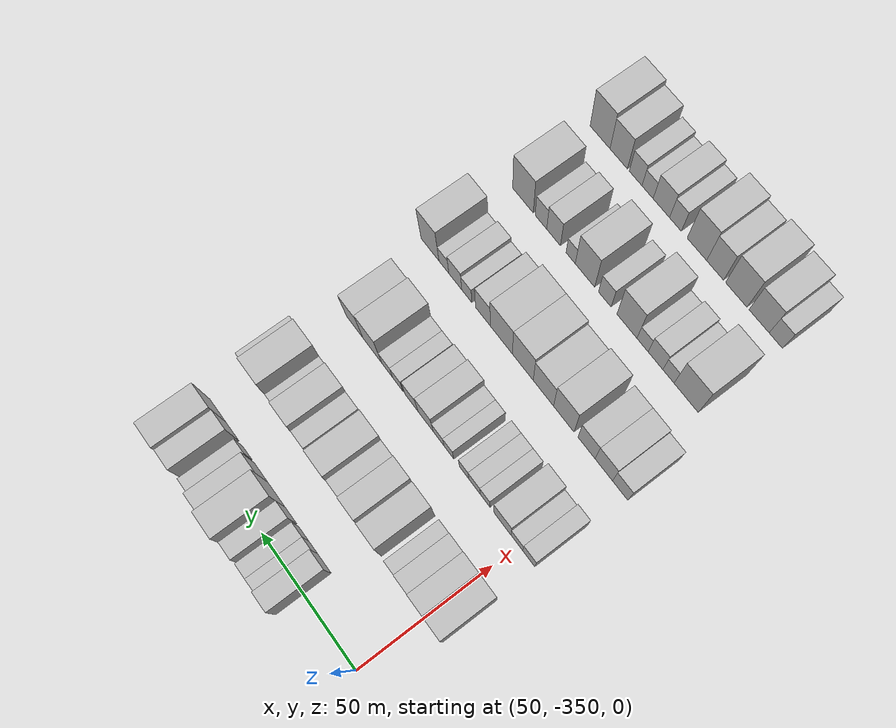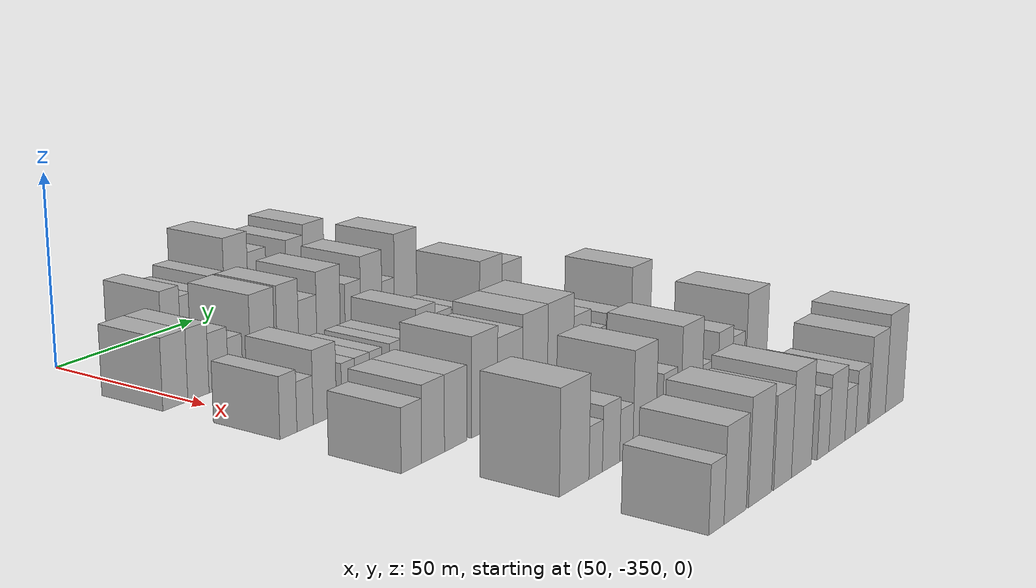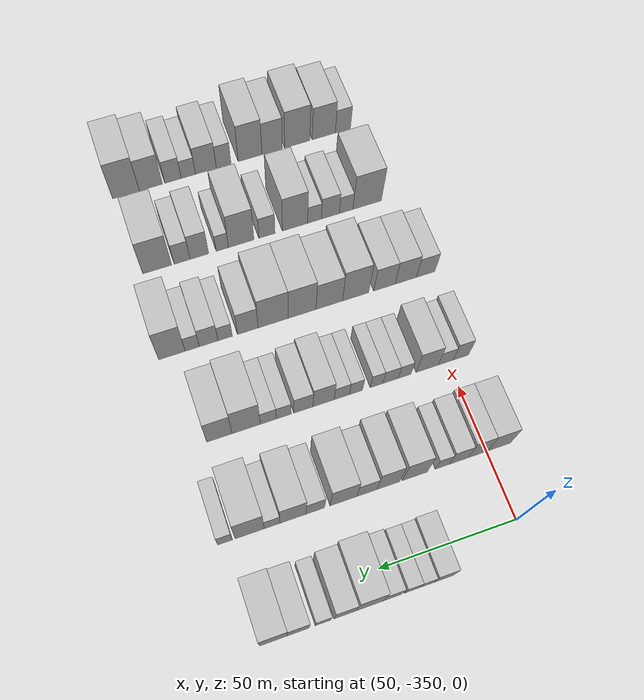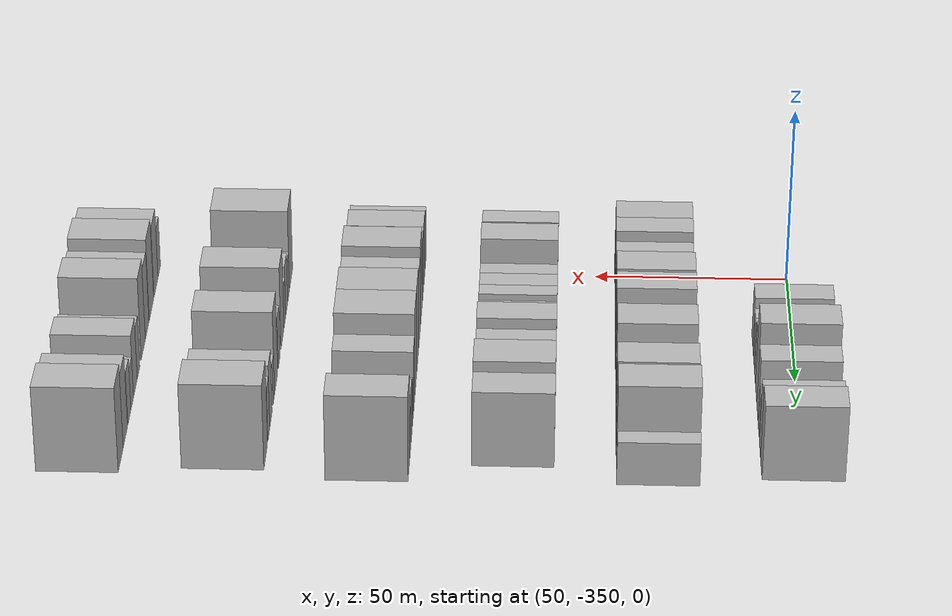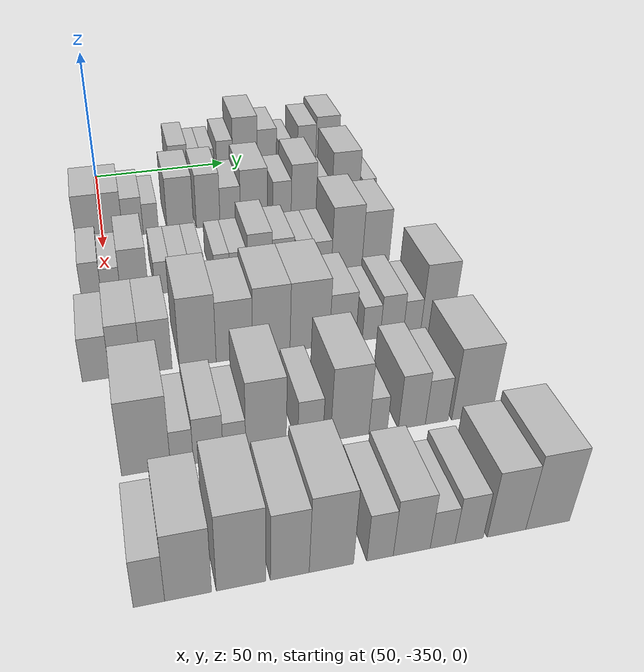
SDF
<sdf version="1.6">
 <world name="default">
  <model name="building_23">
   <static>1</static>
   <pose>50.0000 -318.9872 0 0.000000 0.000000 0.000000</pose>
   <link name="link">
    <pose>0 0 7.50 0 0 0</pose>
    <collision name="collision"><geometry><box><size>20.0000 7.2395 15.0000</size></box></geometry></collision>
    <visual name="visual">
     <cast_shadows>0</cast_shadows>
     <geometry><box><size>20.0000 7.2395 15.0000</size></box></geometry>
     <material>
      <script>
       <uri>model://HANNAS_wall/materials/scripts</uri>
       <uri>model://HANNAS_wall/materials/textures</uri>
       <name>vrc/HANNAS_wall</name>
      </script>
     </material>
    </visual>
   </link>
  </model>
  <model name="building_24">
   <static>1</static>
   <pose>50.0000 -312.9654 0 0.000000 0.000000 0.000000</pose>
   <link name="link">
    <pose>0 0 6.00 0 0 0</pose>
    <collision name="collision"><geometry><box><size>20.0000 4.8041 12.0000</size></box></geometry></collision>
    <visual name="visual">
     <cast_shadows>0</cast_shadows>
     <geometry><box><size>20.0000 4.8041 12.0000</size></box></geometry>
     <material>
      <script>
       <uri>model://HANNAS_wall/materials/scripts</uri>
       <uri>model://HANNAS_wall/materials/textures</uri>
       <name>vrc/HANNAS_wall</name>
      </script>
     </material>
    </visual>
   </link>
  </model>
  <model name="building_25">
   <static>1</static>
   <pose>50.0000 -307.8491 0 0.000000 0.000000 0.000000</pose>
   <link name="link">
    <pose>0 0 6.00 0 0 0</pose>
    <collision name="collision"><geometry><box><size>20.0000 5.4284 12.0000</size></box></geometry></collision>
    <visual name="visual">
     <cast_shadows>0</cast_shadows>
     <geometry><box><size>20.0000 5.4284 12.0000</size></box></geometry>
     <material>
      <script>
       <uri>model://HANNAS_wall/materials/scripts</uri>
       <uri>model://HANNAS_wall/materials/textures</uri>
       <name>vrc/HANNAS_wall</name>
      </script>
     </material>
    </visual>
   </link>
  </model>
  <model name="building_26">
   <static>1</static>
   <pose>50.0000 -300.9718 0 0.000000 0.000000 0.000000</pose>
   <link name="link">
    <pose>0 0 7.50 0 0 0</pose>
    <collision name="collision"><geometry><box><size>20.0000 6.3262 15.0000</size></box></geometry></collision>
    <visual name="visual">
     <cast_shadows>0</cast_shadows>
     <geometry><box><size>20.0000 6.3262 15.0000</size></box></geometry>
     <material>
      <script>
       <uri>model://HANNAS_wall/materials/scripts</uri>
       <uri>model://HANNAS_wall/materials/textures</uri>
       <name>vrc/HANNAS_wall</name>
      </script>
     </material>
    </visual>
   </link>
  </model>
  <model name="building_27">
   <static>1</static>
   <pose>50.0000 -292.9759 0 0.000000 0.000000 0.000000</pose>
   <link name="link">
    <pose>0 0 12.00 0 0 0</pose>
    <collision name="collision"><geometry><box><size>20.0000 9.6657 24.0000</size></box></geometry></collision>
    <visual name="visual">
     <cast_shadows>0</cast_shadows>
     <geometry><box><size>20.0000 9.6657 24.0000</size></box></geometry>
     <material>
      <script>
       <uri>model://HANNAS_wall/materials/scripts</uri>
       <uri>model://HANNAS_wall/materials/textures</uri>
       <name>vrc/HANNAS_wall</name>
      </script>
     </material>
    </visual>
   </link>
  </model>
  <model name="building_28">
   <static>1</static>
   <pose>50.0000 -284.3116 0 0.000000 0.000000 0.000000</pose>
   <link name="link">
    <pose>0 0 9.00 0 0 0</pose>
    <collision name="collision"><geometry><box><size>20.0000 7.6629 18.0000</size></box></geometry></collision>
    <visual name="visual">
     <cast_shadows>0</cast_shadows>
     <geometry><box><size>20.0000 7.6629 18.0000</size></box></geometry>
     <material>
      <script>
       <uri>model://HANNAS_wall/materials/scripts</uri>
       <uri>model://HANNAS_wall/materials/textures</uri>
       <name>vrc/HANNAS_wall</name>
      </script>
     </material>
    </visual>
   </link>
  </model>
  <model name="building_29">
   <static>1</static>
   <pose>50.0000 -276.7502 0 0.000000 0.000000 0.000000</pose>
   <link name="link">
    <pose>0 0 6.00 0 0 0</pose>
    <collision name="collision"><geometry><box><size>20.0000 5.4598 12.0000</size></box></geometry></collision>
    <visual name="visual">
     <cast_shadows>0</cast_shadows>
     <geometry><box><size>20.0000 5.4598 12.0000</size></box></geometry>
     <material>
      <script>
       <uri>model://HANNAS_wall/materials/scripts</uri>
       <uri>model://HANNAS_wall/materials/textures</uri>
       <name>vrc/HANNAS_wall</name>
      </script>
     </material>
    </visual>
   </link>
  </model>
  <model name="building_30">
   <static>1</static>
   <pose>50.0000 -268.2781 0 0.000000 0.000000 0.000000</pose>
   <link name="link">
    <pose>0 0 9.00 0 0 0</pose>
    <collision name="collision"><geometry><box><size>20.0000 7.4844 18.0000</size></box></geometry></collision>
    <visual name="visual">
     <cast_shadows>0</cast_shadows>
     <geometry><box><size>20.0000 7.4844 18.0000</size></box></geometry>
     <material>
      <script>
       <uri>model://HANNAS_wall/materials/scripts</uri>
       <uri>model://HANNAS_wall/materials/textures</uri>
       <name>vrc/HANNAS_wall</name>
      </script>
     </material>
    </visual>
   </link>
  </model>
  <model name="building_31">
   <static>1</static>
   <pose>50.0000 -259.8334 0 0.000000 0.000000 0.000000</pose>
   <link name="link">
    <pose>0 0 10.50 0 0 0</pose>
    <collision name="collision"><geometry><box><size>20.0000 9.4049 21.0000</size></box></geometry></collision>
    <visual name="visual">
     <cast_shadows>0</cast_shadows>
     <geometry><box><size>20.0000 9.4049 21.0000</size></box></geometry>
     <material>
      <script>
       <uri>model://HANNAS_wall/materials/scripts</uri>
       <uri>model://HANNAS_wall/materials/textures</uri>
       <name>vrc/HANNAS_wall</name>
      </script>
     </material>
    </visual>
   </link>
  </model>
  <model name="building_152">
   <static>1</static>
   <pose>85.0000 -354.6676 0 0.000000 0.000000 0.000000</pose>
   <link name="link">
    <pose>0 0 9.00 0 0 0</pose>
    <collision name="collision"><geometry><box><size>20.0000 8.5775 18.0000</size></box></geometry></collision>
    <visual name="visual">
     <cast_shadows>0</cast_shadows>
     <geometry><box><size>20.0000 8.5775 18.0000</size></box></geometry>
     <material>
      <script>
       <uri>model://HANNAS_wall/materials/scripts</uri>
       <uri>model://HANNAS_wall/materials/textures</uri>
       <name>vrc/HANNAS_wall</name>
      </script>
     </material>
    </visual>
   </link>
  </model>
  <model name="building_153">
   <static>1</static>
   <pose>85.0000 -346.6539 0 0.000000 0.000000 0.000000</pose>
   <link name="link">
    <pose>0 0 9.00 0 0 0</pose>
    <collision name="collision"><geometry><box><size>20.0000 7.4499 18.0000</size></box></geometry></collision>
    <visual name="visual">
     <cast_shadows>0</cast_shadows>
     <geometry><box><size>20.0000 7.4499 18.0000</size></box></geometry>
     <material>
      <script>
       <uri>model://HANNAS_wall/materials/scripts</uri>
       <uri>model://HANNAS_wall/materials/textures</uri>
       <name>vrc/HANNAS_wall</name>
      </script>
     </material>
    </visual>
   </link>
  </model>
  <model name="building_154">
   <static>1</static>
   <pose>85.0000 -339.4257 0 0.000000 0.000000 0.000000</pose>
   <link name="link">
    <pose>0 0 7.50 0 0 0</pose>
    <collision name="collision"><geometry><box><size>20.0000 7.0065 15.0000</size></box></geometry></collision>
    <visual name="visual">
     <cast_shadows>0</cast_shadows>
     <geometry><box><size>20.0000 7.0065 15.0000</size></box></geometry>
     <material>
      <script>
       <uri>model://HANNAS_wall/materials/scripts</uri>
       <uri>model://HANNAS_wall/materials/textures</uri>
       <name>vrc/HANNAS_wall</name>
      </script>
     </material>
    </visual>
   </link>
  </model>
  <model name="building_155">
   <static>1</static>
   <pose>85.0000 -333.2619 0 0.000000 0.000000 0.000000</pose>
   <link name="link">
    <pose>0 0 6.00 0 0 0</pose>
    <collision name="collision"><geometry><box><size>20.0000 5.3212 12.0000</size></box></geometry></collision>
    <visual name="visual">
     <cast_shadows>0</cast_shadows>
     <geometry><box><size>20.0000 5.3212 12.0000</size></box></geometry>
     <material>
      <script>
       <uri>model://HANNAS_wall/materials/scripts</uri>
       <uri>model://HANNAS_wall/materials/textures</uri>
       <name>vrc/HANNAS_wall</name>
      </script>
     </material>
    </visual>
   </link>
  </model>
  <model name="building_156">
   <static>1</static>
   <pose>85.0000 -322.9797 0 0.000000 0.000000 0.000000</pose>
   <link name="link">
    <pose>0 0 10.50 0 0 0</pose>
    <collision name="collision"><geometry><box><size>20.0000 9.2432 21.0000</size></box></geometry></collision>
    <visual name="visual">
     <cast_shadows>0</cast_shadows>
     <geometry><box><size>20.0000 9.2432 21.0000</size></box></geometry>
     <material>
      <script>
       <uri>model://HANNAS_wall/materials/scripts</uri>
       <uri>model://HANNAS_wall/materials/textures</uri>
       <name>vrc/HANNAS_wall</name>
      </script>
     </material>
    </visual>
   </link>
  </model>
  <model name="building_157">
   <static>1</static>
   <pose>85.0000 -313.1555 0 0.000000 0.000000 0.000000</pose>
   <link name="link">
    <pose>0 0 10.50 0 0 0</pose>
    <collision name="collision"><geometry><box><size>20.0000 8.4052 21.0000</size></box></geometry></collision>
    <visual name="visual">
     <cast_shadows>0</cast_shadows>
     <geometry><box><size>20.0000 8.4052 21.0000</size></box></geometry>
     <material>
      <script>
       <uri>model://HANNAS_wall/materials/scripts</uri>
       <uri>model://HANNAS_wall/materials/textures</uri>
       <name>vrc/HANNAS_wall</name>
      </script>
     </material>
    </visual>
   </link>
  </model>
  <model name="building_158">
   <static>1</static>
   <pose>85.0000 -305.2942 0 0.000000 0.000000 0.000000</pose>
   <link name="link">
    <pose>0 0 7.50 0 0 0</pose>
    <collision name="collision"><geometry><box><size>20.0000 7.3174 15.0000</size></box></geometry></collision>
    <visual name="visual">
     <cast_shadows>0</cast_shadows>
     <geometry><box><size>20.0000 7.3174 15.0000</size></box></geometry>
     <material>
      <script>
       <uri>model://HANNAS_wall/materials/scripts</uri>
       <uri>model://HANNAS_wall/materials/textures</uri>
       <name>vrc/HANNAS_wall</name>
      </script>
     </material>
    </visual>
   </link>
  </model>
  <model name="building_159">
   <static>1</static>
   <pose>85.0000 -296.7519 0 0.000000 0.000000 0.000000</pose>
   <link name="link">
    <pose>0 0 10.50 0 0 0</pose>
    <collision name="collision"><geometry><box><size>20.0000 9.7672 21.0000</size></box></geometry></collision>
    <visual name="visual">
     <cast_shadows>0</cast_shadows>
     <geometry><box><size>20.0000 9.7672 21.0000</size></box></geometry>
     <material>
      <script>
       <uri>model://HANNAS_wall/materials/scripts</uri>
       <uri>model://HANNAS_wall/materials/textures</uri>
       <name>vrc/HANNAS_wall</name>
      </script>
     </material>
    </visual>
   </link>
  </model>
  <model name="building_160">
   <static>1</static>
   <pose>85.0000 -286.5235 0 0.000000 0.000000 0.000000</pose>
   <link name="link">
    <pose>0 0 7.50 0 0 0</pose>
    <collision name="collision"><geometry><box><size>20.0000 6.6896 15.0000</size></box></geometry></collision>
    <visual name="visual">
     <cast_shadows>0</cast_shadows>
     <geometry><box><size>20.0000 6.6896 15.0000</size></box></geometry>
     <material>
      <script>
       <uri>model://HANNAS_wall/materials/scripts</uri>
       <uri>model://HANNAS_wall/materials/textures</uri>
       <name>vrc/HANNAS_wall</name>
      </script>
     </material>
    </visual>
   </link>
  </model>
  <model name="building_161">
   <static>1</static>
   <pose>85.0000 -278.5194 0 0.000000 0.000000 0.000000</pose>
   <link name="link">
    <pose>0 0 10.50 0 0 0</pose>
    <collision name="collision"><geometry><box><size>20.0000 9.3187 21.0000</size></box></geometry></collision>
    <visual name="visual">
     <cast_shadows>0</cast_shadows>
     <geometry><box><size>20.0000 9.3187 21.0000</size></box></geometry>
     <material>
      <script>
       <uri>model://HANNAS_wall/materials/scripts</uri>
       <uri>model://HANNAS_wall/materials/textures</uri>
       <name>vrc/HANNAS_wall</name>
      </script>
     </material>
    </visual>
   </link>
  </model>
  <model name="building_162">
   <static>1</static>
   <pose>85.0000 -271.0503 0 0.000000 0.000000 0.000000</pose>
   <link name="link">
    <pose>0 0 6.00 0 0 0</pose>
    <collision name="collision"><geometry><box><size>20.0000 5.6196 12.0000</size></box></geometry></collision>
    <visual name="visual">
     <cast_shadows>0</cast_shadows>
     <geometry><box><size>20.0000 5.6196 12.0000</size></box></geometry>
     <material>
      <script>
       <uri>model://HANNAS_wall/materials/scripts</uri>
       <uri>model://HANNAS_wall/materials/textures</uri>
       <name>vrc/HANNAS_wall</name>
      </script>
     </material>
    </visual>
   </link>
  </model>
  <model name="building_163">
   <static>1</static>
   <pose>85.0000 -263.1094 0 0.000000 0.000000 0.000000</pose>
   <link name="link">
    <pose>0 0 12.00 0 0 0</pose>
    <collision name="collision"><geometry><box><size>20.0000 10.2622 24.0000</size></box></geometry></collision>
    <visual name="visual">
     <cast_shadows>0</cast_shadows>
     <geometry><box><size>20.0000 10.2622 24.0000</size></box></geometry>
     <material>
      <script>
       <uri>model://HANNAS_wall/materials/scripts</uri>
       <uri>model://HANNAS_wall/materials/textures</uri>
       <name>vrc/HANNAS_wall</name>
      </script>
     </material>
    </visual>
   </link>
  </model>
  <model name="building_164">
   <static>1</static>
   <pose>85.0000 -254.4084 0 0.000000 0.000000 0.000000</pose>
   <link name="link">
    <pose>0 0 6.00 0 0 0</pose>
    <collision name="collision"><geometry><box><size>20.0000 5.1397 12.0000</size></box></geometry></collision>
    <visual name="visual">
     <cast_shadows>0</cast_shadows>
     <geometry><box><size>20.0000 5.1397 12.0000</size></box></geometry>
     <material>
      <script>
       <uri>model://HANNAS_wall/materials/scripts</uri>
       <uri>model://HANNAS_wall/materials/textures</uri>
       <name>vrc/HANNAS_wall</name>
      </script>
     </material>
    </visual>
   </link>
  </model>
  <model name="building_285">
   <static>1</static>
   <pose>120.0000 -354.9940 0 0.000000 0.000000 0.000000</pose>
   <link name="link">
    <pose>0 0 7.50 0 0 0</pose>
    <collision name="collision"><geometry><box><size>20.0000 6.0153 15.0000</size></box></geometry></collision>
    <visual name="visual">
     <cast_shadows>0</cast_shadows>
     <geometry><box><size>20.0000 6.0153 15.0000</size></box></geometry>
     <material>
      <script>
       <uri>model://HANNAS_wall/materials/scripts</uri>
       <uri>model://HANNAS_wall/materials/textures</uri>
       <name>vrc/HANNAS_wall</name>
      </script>
     </material>
    </visual>
   </link>
  </model>
  <model name="building_286">
   <static>1</static>
   <pose>120.0000 -349.0660 0 0.000000 0.000000 0.000000</pose>
   <link name="link">
    <pose>0 0 6.00 0 0 0</pose>
    <collision name="collision"><geometry><box><size>20.0000 5.8406 12.0000</size></box></geometry></collision>
    <visual name="visual">
     <cast_shadows>0</cast_shadows>
     <geometry><box><size>20.0000 5.8406 12.0000</size></box></geometry>
     <material>
      <script>
       <uri>model://HANNAS_wall/materials/scripts</uri>
       <uri>model://HANNAS_wall/materials/textures</uri>
       <name>vrc/HANNAS_wall</name>
      </script>
     </material>
    </visual>
   </link>
  </model>
  <model name="building_287">
   <static>1</static>
   <pose>120.0000 -341.8634 0 0.000000 0.000000 0.000000</pose>
   <link name="link">
    <pose>0 0 9.00 0 0 0</pose>
    <collision name="collision"><geometry><box><size>20.0000 8.5646 18.0000</size></box></geometry></collision>
    <visual name="visual">
     <cast_shadows>0</cast_shadows>
     <geometry><box><size>20.0000 8.5646 18.0000</size></box></geometry>
     <material>
      <script>
       <uri>model://HANNAS_wall/materials/scripts</uri>
       <uri>model://HANNAS_wall/materials/textures</uri>
       <name>vrc/HANNAS_wall</name>
      </script>
     </material>
    </visual>
   </link>
  </model>
  <model name="building_288">
   <static>1</static>
   <pose>120.0000 -333.0807 0 0.000000 0.000000 0.000000</pose>
   <link name="link">
    <pose>0 0 6.00 0 0 0</pose>
    <collision name="collision"><geometry><box><size>20.0000 5.0007 12.0000</size></box></geometry></collision>
    <visual name="visual">
     <cast_shadows>0</cast_shadows>
     <geometry><box><size>20.0000 5.0007 12.0000</size></box></geometry>
     <material>
      <script>
       <uri>model://HANNAS_wall/materials/scripts</uri>
       <uri>model://HANNAS_wall/materials/textures</uri>
       <name>vrc/HANNAS_wall</name>
      </script>
     </material>
    </visual>
   </link>
  </model>
  <model name="building_289">
   <static>1</static>
   <pose>120.0000 -327.6463 0 0.000000 0.000000 0.000000</pose>
   <link name="link">
    <pose>0 0 6.00 0 0 0</pose>
    <collision name="collision"><geometry><box><size>20.0000 5.8680 12.0000</size></box></geometry></collision>
    <visual name="visual">
     <cast_shadows>0</cast_shadows>
     <geometry><box><size>20.0000 5.8680 12.0000</size></box></geometry>
     <material>
      <script>
       <uri>model://HANNAS_wall/materials/scripts</uri>
       <uri>model://HANNAS_wall/materials/textures</uri>
       <name>vrc/HANNAS_wall</name>
      </script>
     </material>
    </visual>
   </link>
  </model>
  <model name="building_290">
   <static>1</static>
   <pose>120.0000 -322.3057 0 0.000000 0.000000 0.000000</pose>
   <link name="link">
    <pose>0 0 6.00 0 0 0</pose>
    <collision name="collision"><geometry><box><size>20.0000 4.8133 12.0000</size></box></geometry></collision>
    <visual name="visual">
     <cast_shadows>0</cast_shadows>
     <geometry><box><size>20.0000 4.8133 12.0000</size></box></geometry>
     <material>
      <script>
       <uri>model://HANNAS_wall/materials/scripts</uri>
       <uri>model://HANNAS_wall/materials/textures</uri>
       <name>vrc/HANNAS_wall</name>
      </script>
     </material>
    </visual>
   </link>
  </model>
  <model name="building_291">
   <static>1</static>
   <pose>120.0000 -314.3906 0 0.000000 0.000000 0.000000</pose>
   <link name="link">
    <pose>0 0 6.00 0 0 0</pose>
    <collision name="collision"><geometry><box><size>20.0000 5.0170 12.0000</size></box></geometry></collision>
    <visual name="visual">
     <cast_shadows>0</cast_shadows>
     <geometry><box><size>20.0000 5.0170 12.0000</size></box></geometry>
     <material>
      <script>
       <uri>model://HANNAS_wall/materials/scripts</uri>
       <uri>model://HANNAS_wall/materials/textures</uri>
       <name>vrc/HANNAS_wall</name>
      </script>
     </material>
    </visual>
   </link>
  </model>
  <model name="building_292">
   <static>1</static>
   <pose>120.0000 -309.0183 0 0.000000 0.000000 0.000000</pose>
   <link name="link">
    <pose>0 0 6.00 0 0 0</pose>
    <collision name="collision"><geometry><box><size>20.0000 5.7274 12.0000</size></box></geometry></collision>
    <visual name="visual">
     <cast_shadows>0</cast_shadows>
     <geometry><box><size>20.0000 5.7274 12.0000</size></box></geometry>
     <material>
      <script>
       <uri>model://HANNAS_wall/materials/scripts</uri>
       <uri>model://HANNAS_wall/materials/textures</uri>
       <name>vrc/HANNAS_wall</name>
      </script>
     </material>
    </visual>
   </link>
  </model>
  <model name="building_293">
   <static>1</static>
   <pose>120.0000 -302.1082 0 0.000000 0.000000 0.000000</pose>
   <link name="link">
    <pose>0 0 9.00 0 0 0</pose>
    <collision name="collision"><geometry><box><size>20.0000 8.0928 18.0000</size></box></geometry></collision>
    <visual name="visual">
     <cast_shadows>0</cast_shadows>
     <geometry><box><size>20.0000 8.0928 18.0000</size></box></geometry>
     <material>
      <script>
       <uri>model://HANNAS_wall/materials/scripts</uri>
       <uri>model://HANNAS_wall/materials/textures</uri>
       <name>vrc/HANNAS_wall</name>
      </script>
     </material>
    </visual>
   </link>
  </model>
  <model name="building_294">
   <static>1</static>
   <pose>120.0000 -294.4965 0 0.000000 0.000000 0.000000</pose>
   <link name="link">
    <pose>0 0 7.50 0 0 0</pose>
    <collision name="collision"><geometry><box><size>20.0000 7.1307 15.0000</size></box></geometry></collision>
    <visual name="visual">
     <cast_shadows>0</cast_shadows>
     <geometry><box><size>20.0000 7.1307 15.0000</size></box></geometry>
     <material>
      <script>
       <uri>model://HANNAS_wall/materials/scripts</uri>
       <uri>model://HANNAS_wall/materials/textures</uri>
       <name>vrc/HANNAS_wall</name>
      </script>
     </material>
    </visual>
   </link>
  </model>
  <model name="building_295">
   <static>1</static>
   <pose>120.0000 -287.1572 0 0.000000 0.000000 0.000000</pose>
   <link name="link">
    <pose>0 0 6.00 0 0 0</pose>
    <collision name="collision"><geometry><box><size>20.0000 5.5478 12.0000</size></box></geometry></collision>
    <visual name="visual">
     <cast_shadows>0</cast_shadows>
     <geometry><box><size>20.0000 5.5478 12.0000</size></box></geometry>
     <material>
      <script>
       <uri>model://HANNAS_wall/materials/scripts</uri>
       <uri>model://HANNAS_wall/materials/textures</uri>
       <name>vrc/HANNAS_wall</name>
      </script>
     </material>
    </visual>
   </link>
  </model>
  <model name="building_296">
   <static>1</static>
   <pose>120.0000 -281.3911 0 0.000000 0.000000 0.000000</pose>
   <link name="link">
    <pose>0 0 6.00 0 0 0</pose>
    <collision name="collision"><geometry><box><size>20.0000 5.9846 12.0000</size></box></geometry></collision>
    <visual name="visual">
     <cast_shadows>0</cast_shadows>
     <geometry><box><size>20.0000 5.9846 12.0000</size></box></geometry>
     <material>
      <script>
       <uri>model://HANNAS_wall/materials/scripts</uri>
       <uri>model://HANNAS_wall/materials/textures</uri>
       <name>vrc/HANNAS_wall</name>
      </script>
     </material>
    </visual>
   </link>
  </model>
  <model name="building_297">
   <static>1</static>
   <pose>120.0000 -273.1994 0 0.000000 0.000000 0.000000</pose>
   <link name="link">
    <pose>0 0 12.00 0 0 0</pose>
    <collision name="collision"><geometry><box><size>20.0000 10.3987 24.0000</size></box></geometry></collision>
    <visual name="visual">
     <cast_shadows>0</cast_shadows>
     <geometry><box><size>20.0000 10.3987 24.0000</size></box></geometry>
     <material>
      <script>
       <uri>model://HANNAS_wall/materials/scripts</uri>
       <uri>model://HANNAS_wall/materials/textures</uri>
       <name>vrc/HANNAS_wall</name>
      </script>
     </material>
    </visual>
   </link>
  </model>
  <model name="building_298">
   <static>1</static>
   <pose>120.0000 -263.3609 0 0.000000 0.000000 0.000000</pose>
   <link name="link">
    <pose>0 0 10.50 0 0 0</pose>
    <collision name="collision"><geometry><box><size>20.0000 9.2783 21.0000</size></box></geometry></collision>
    <visual name="visual">
     <cast_shadows>0</cast_shadows>
     <geometry><box><size>20.0000 9.2783 21.0000</size></box></geometry>
     <material>
      <script>
       <uri>model://HANNAS_wall/materials/scripts</uri>
       <uri>model://HANNAS_wall/materials/textures</uri>
       <name>vrc/HANNAS_wall</name>
      </script>
     </material>
    </visual>
   </link>
  </model>
  <model name="building_410">
   <static>1</static>
   <pose>155.0000 -355.5512 0 0.000000 0.000000 0.000000</pose>
   <link name="link">
    <pose>0 0 7.50 0 0 0</pose>
    <collision name="collision"><geometry><box><size>20.0000 7.4859 15.0000</size></box></geometry></collision>
    <visual name="visual">
     <cast_shadows>0</cast_shadows>
     <geometry><box><size>20.0000 7.4859 15.0000</size></box></geometry>
     <material>
      <script>
       <uri>model://HANNAS_wall/materials/scripts</uri>
       <uri>model://HANNAS_wall/materials/textures</uri>
       <name>vrc/HANNAS_wall</name>
      </script>
     </material>
    </visual>
   </link>
  </model>
  <model name="building_411">
   <static>1</static>
   <pose>155.0000 -347.5131 0 0.000000 0.000000 0.000000</pose>
   <link name="link">
    <pose>0 0 9.00 0 0 0</pose>
    <collision name="collision"><geometry><box><size>20.0000 8.5904 18.0000</size></box></geometry></collision>
    <visual name="visual">
     <cast_shadows>0</cast_shadows>
     <geometry><box><size>20.0000 8.5904 18.0000</size></box></geometry>
     <material>
      <script>
       <uri>model://HANNAS_wall/materials/scripts</uri>
       <uri>model://HANNAS_wall/materials/textures</uri>
       <name>vrc/HANNAS_wall</name>
      </script>
     </material>
    </visual>
   </link>
  </model>
  <model name="building_412">
   <static>1</static>
   <pose>155.0000 -338.9265 0 0.000000 0.000000 0.000000</pose>
   <link name="link">
    <pose>0 0 9.00 0 0 0</pose>
    <collision name="collision"><geometry><box><size>20.0000 8.5827 18.0000</size></box></geometry></collision>
    <visual name="visual">
     <cast_shadows>0</cast_shadows>
     <geometry><box><size>20.0000 8.5827 18.0000</size></box></geometry>
     <material>
      <script>
       <uri>model://HANNAS_wall/materials/scripts</uri>
       <uri>model://HANNAS_wall/materials/textures</uri>
       <name>vrc/HANNAS_wall</name>
      </script>
     </material>
    </visual>
   </link>
  </model>
  <model name="building_413">
   <static>1</static>
   <pose>155.0000 -327.4248 0 0.000000 0.000000 0.000000</pose>
   <link name="link">
    <pose>0 0 12.00 0 0 0</pose>
    <collision name="collision"><geometry><box><size>20.0000 10.4208 24.0000</size></box></geometry></collision>
    <visual name="visual">
     <cast_shadows>0</cast_shadows>
     <geometry><box><size>20.0000 10.4208 24.0000</size></box></geometry>
     <material>
      <script>
       <uri>model://HANNAS_wall/materials/scripts</uri>
       <uri>model://HANNAS_wall/materials/textures</uri>
       <name>vrc/HANNAS_wall</name>
      </script>
     </material>
    </visual>
   </link>
  </model>
  <model name="building_414">
   <static>1</static>
   <pose>155.0000 -316.9832 0 0.000000 0.000000 0.000000</pose>
   <link name="link">
    <pose>0 0 10.50 0 0 0</pose>
    <collision name="collision"><geometry><box><size>20.0000 10.4624 21.0000</size></box></geometry></collision>
    <visual name="visual">
     <cast_shadows>0</cast_shadows>
     <geometry><box><size>20.0000 10.4624 21.0000</size></box></geometry>
     <material>
      <script>
       <uri>model://HANNAS_wall/materials/scripts</uri>
       <uri>model://HANNAS_wall/materials/textures</uri>
       <name>vrc/HANNAS_wall</name>
      </script>
     </material>
    </visual>
   </link>
  </model>
  <model name="building_415">
   <static>1</static>
   <pose>155.0000 -306.3069 0 0.000000 0.000000 0.000000</pose>
   <link name="link">
    <pose>0 0 12.00 0 0 0</pose>
    <collision name="collision"><geometry><box><size>20.0000 10.8900 24.0000</size></box></geometry></collision>
    <visual name="visual">
     <cast_shadows>0</cast_shadows>
     <geometry><box><size>20.0000 10.8900 24.0000</size></box></geometry>
     <material>
      <script>
       <uri>model://HANNAS_wall/materials/scripts</uri>
       <uri>model://HANNAS_wall/materials/textures</uri>
       <name>vrc/HANNAS_wall</name>
      </script>
     </material>
    </visual>
   </link>
  </model>
  <model name="building_416">
   <static>1</static>
   <pose>155.0000 -295.0212 0 0.000000 0.000000 0.000000</pose>
   <link name="link">
    <pose>0 0 12.00 0 0 0</pose>
    <collision name="collision"><geometry><box><size>20.0000 11.6814 24.0000</size></box></geometry></collision>
    <visual name="visual">
     <cast_shadows>0</cast_shadows>
     <geometry><box><size>20.0000 11.6814 24.0000</size></box></geometry>
     <material>
      <script>
       <uri>model://HANNAS_wall/materials/scripts</uri>
       <uri>model://HANNAS_wall/materials/textures</uri>
       <name>vrc/HANNAS_wall</name>
      </script>
     </material>
    </visual>
   </link>
  </model>
  <model name="building_417">
   <static>1</static>
   <pose>155.0000 -285.2077 0 0.000000 0.000000 0.000000</pose>
   <link name="link">
    <pose>0 0 9.00 0 0 0</pose>
    <collision name="collision"><geometry><box><size>20.0000 7.9457 18.0000</size></box></geometry></collision>
    <visual name="visual">
     <cast_shadows>0</cast_shadows>
     <geometry><box><size>20.0000 7.9457 18.0000</size></box></geometry>
     <material>
      <script>
       <uri>model://HANNAS_wall/materials/scripts</uri>
       <uri>model://HANNAS_wall/materials/textures</uri>
       <name>vrc/HANNAS_wall</name>
      </script>
     </material>
    </visual>
   </link>
  </model>
  <model name="building_418">
   <static>1</static>
   <pose>155.0000 -276.4928 0 0.000000 0.000000 0.000000</pose>
   <link name="link">
    <pose>0 0 6.00 0 0 0</pose>
    <collision name="collision"><geometry><box><size>20.0000 5.4841 12.0000</size></box></geometry></collision>
    <visual name="visual">
     <cast_shadows>0</cast_shadows>
     <geometry><box><size>20.0000 5.4841 12.0000</size></box></geometry>
     <material>
      <script>
       <uri>model://HANNAS_wall/materials/scripts</uri>
       <uri>model://HANNAS_wall/materials/textures</uri>
       <name>vrc/HANNAS_wall</name>
      </script>
     </material>
    </visual>
   </link>
  </model>
  <model name="building_419">
   <static>1</static>
   <pose>155.0000 -270.2105 0 0.000000 0.000000 0.000000</pose>
   <link name="link">
    <pose>0 0 7.50 0 0 0</pose>
    <collision name="collision"><geometry><box><size>20.0000 7.0805 15.0000</size></box></geometry></collision>
    <visual name="visual">
     <cast_shadows>0</cast_shadows>
     <geometry><box><size>20.0000 7.0805 15.0000</size></box></geometry>
     <material>
      <script>
       <uri>model://HANNAS_wall/materials/scripts</uri>
       <uri>model://HANNAS_wall/materials/textures</uri>
       <name>vrc/HANNAS_wall</name>
      </script>
     </material>
    </visual>
   </link>
  </model>
  <model name="building_420">
   <static>1</static>
   <pose>155.0000 -263.9633 0 0.000000 0.000000 0.000000</pose>
   <link name="link">
    <pose>0 0 6.00 0 0 0</pose>
    <collision name="collision"><geometry><box><size>20.0000 5.4138 12.0000</size></box></geometry></collision>
    <visual name="visual">
     <cast_shadows>0</cast_shadows>
     <geometry><box><size>20.0000 5.4138 12.0000</size></box></geometry>
     <material>
      <script>
       <uri>model://HANNAS_wall/materials/scripts</uri>
       <uri>model://HANNAS_wall/materials/textures</uri>
       <name>vrc/HANNAS_wall</name>
      </script>
     </material>
    </visual>
   </link>
  </model>
  <model name="building_421">
   <static>1</static>
   <pose>155.0000 -256.2587 0 0.000000 0.000000 0.000000</pose>
   <link name="link">
    <pose>0 0 12.00 0 0 0</pose>
    <collision name="collision"><geometry><box><size>20.0000 9.9955 24.0000</size></box></geometry></collision>
    <visual name="visual">
     <cast_shadows>0</cast_shadows>
     <geometry><box><size>20.0000 9.9955 24.0000</size></box></geometry>
     <material>
      <script>
       <uri>model://HANNAS_wall/materials/scripts</uri>
       <uri>model://HANNAS_wall/materials/textures</uri>
       <name>vrc/HANNAS_wall</name>
      </script>
     </material>
    </visual>
   </link>
  </model>
  <model name="building_540">
   <static>1</static>
   <pose>190.0000 -345.3075 0 0.000000 0.000000 0.000000</pose>
   <link name="link">
    <pose>0 0 12.00 0 0 0</pose>
    <collision name="collision"><geometry><box><size>20.0000 11.8399 24.0000</size></box></geometry></collision>
    <visual name="visual">
     <cast_shadows>0</cast_shadows>
     <geometry><box><size>20.0000 11.8399 24.0000</size></box></geometry>
     <material>
      <script>
       <uri>model://HANNAS_wall/materials/scripts</uri>
       <uri>model://HANNAS_wall/materials/textures</uri>
       <name>vrc/HANNAS_wall</name>
      </script>
     </material>
    </visual>
   </link>
  </model>
  <model name="building_541">
   <static>1</static>
   <pose>190.0000 -336.5919 0 0.000000 0.000000 0.000000</pose>
   <link name="link">
    <pose>0 0 6.00 0 0 0</pose>
    <collision name="collision"><geometry><box><size>20.0000 5.5913 12.0000</size></box></geometry></collision>
    <visual name="visual">
     <cast_shadows>0</cast_shadows>
     <geometry><box><size>20.0000 5.5913 12.0000</size></box></geometry>
     <material>
      <script>
       <uri>model://HANNAS_wall/materials/scripts</uri>
       <uri>model://HANNAS_wall/materials/textures</uri>
       <name>vrc/HANNAS_wall</name>
      </script>
     </material>
    </visual>
   </link>
  </model>
  <model name="building_542">
   <static>1</static>
   <pose>190.0000 -330.1208 0 0.000000 0.000000 0.000000</pose>
   <link name="link">
    <pose>0 0 7.50 0 0 0</pose>
    <collision name="collision"><geometry><box><size>20.0000 7.3508 15.0000</size></box></geometry></collision>
    <visual name="visual">
     <cast_shadows>0</cast_shadows>
     <geometry><box><size>20.0000 7.3508 15.0000</size></box></geometry>
     <material>
      <script>
       <uri>model://HANNAS_wall/materials/scripts</uri>
       <uri>model://HANNAS_wall/materials/textures</uri>
       <name>vrc/HANNAS_wall</name>
      </script>
     </material>
    </visual>
   </link>
  </model>
  <model name="building_543">
   <static>1</static>
   <pose>190.0000 -323.6066 0 0.000000 0.000000 0.000000</pose>
   <link name="link">
    <pose>0 0 6.00 0 0 0</pose>
    <collision name="collision"><geometry><box><size>20.0000 5.6778 12.0000</size></box></geometry></collision>
    <visual name="visual">
     <cast_shadows>0</cast_shadows>
     <geometry><box><size>20.0000 5.6778 12.0000</size></box></geometry>
     <material>
      <script>
       <uri>model://HANNAS_wall/materials/scripts</uri>
       <uri>model://HANNAS_wall/materials/textures</uri>
       <name>vrc/HANNAS_wall</name>
      </script>
     </material>
    </visual>
   </link>
  </model>
  <model name="building_544">
   <static>1</static>
   <pose>190.0000 -315.6525 0 0.000000 0.000000 0.000000</pose>
   <link name="link">
    <pose>0 0 12.00 0 0 0</pose>
    <collision name="collision"><geometry><box><size>20.0000 10.2305 24.0000</size></box></geometry></collision>
    <visual name="visual">
     <cast_shadows>0</cast_shadows>
     <geometry><box><size>20.0000 10.2305 24.0000</size></box></geometry>
     <material>
      <script>
       <uri>model://HANNAS_wall/materials/scripts</uri>
       <uri>model://HANNAS_wall/materials/textures</uri>
       <name>vrc/HANNAS_wall</name>
      </script>
     </material>
    </visual>
   </link>
  </model>
  <model name="building_545">
   <static>1</static>
   <pose>190.0000 -304.2779 0 0.000000 0.000000 0.000000</pose>
   <link name="link">
    <pose>0 0 7.50 0 0 0</pose>
    <collision name="collision"><geometry><box><size>20.0000 6.5185 15.0000</size></box></geometry></collision>
    <visual name="visual">
     <cast_shadows>0</cast_shadows>
     <geometry><box><size>20.0000 6.5185 15.0000</size></box></geometry>
     <material>
      <script>
       <uri>model://HANNAS_wall/materials/scripts</uri>
       <uri>model://HANNAS_wall/materials/textures</uri>
       <name>vrc/HANNAS_wall</name>
      </script>
     </material>
    </visual>
   </link>
  </model>
  <model name="building_546">
   <static>1</static>
   <pose>190.0000 -293.9378 0 0.000000 0.000000 0.000000</pose>
   <link name="link">
    <pose>0 0 12.00 0 0 0</pose>
    <collision name="collision"><geometry><box><size>20.0000 10.1617 24.0000</size></box></geometry></collision>
    <visual name="visual">
     <cast_shadows>0</cast_shadows>
     <geometry><box><size>20.0000 10.1617 24.0000</size></box></geometry>
     <material>
      <script>
       <uri>model://HANNAS_wall/materials/scripts</uri>
       <uri>model://HANNAS_wall/materials/textures</uri>
       <name>vrc/HANNAS_wall</name>
      </script>
     </material>
    </visual>
   </link>
  </model>
  <model name="building_547">
   <static>1</static>
   <pose>190.0000 -286.4057 0 0.000000 0.000000 0.000000</pose>
   <link name="link">
    <pose>0 0 6.00 0 0 0</pose>
    <collision name="collision"><geometry><box><size>20.0000 4.9027 12.0000</size></box></geometry></collision>
    <visual name="visual">
     <cast_shadows>0</cast_shadows>
     <geometry><box><size>20.0000 4.9027 12.0000</size></box></geometry>
     <material>
      <script>
       <uri>model://HANNAS_wall/materials/scripts</uri>
       <uri>model://HANNAS_wall/materials/textures</uri>
       <name>vrc/HANNAS_wall</name>
      </script>
     </material>
    </visual>
   </link>
  </model>
  <model name="building_548">
   <static>1</static>
   <pose>190.0000 -277.2844 0 0.000000 0.000000 0.000000</pose>
   <link name="link">
    <pose>0 0 9.00 0 0 0</pose>
    <collision name="collision"><geometry><box><size>20.0000 7.3398 18.0000</size></box></geometry></collision>
    <visual name="visual">
     <cast_shadows>0</cast_shadows>
     <geometry><box><size>20.0000 7.3398 18.0000</size></box></geometry>
     <material>
      <script>
       <uri>model://HANNAS_wall/materials/scripts</uri>
       <uri>model://HANNAS_wall/materials/textures</uri>
       <name>vrc/HANNAS_wall</name>
      </script>
     </material>
    </visual>
   </link>
  </model>
  <model name="building_549">
   <static>1</static>
   <pose>190.0000 -270.4796 0 0.000000 0.000000 0.000000</pose>
   <link name="link">
    <pose>0 0 7.50 0 0 0</pose>
    <collision name="collision"><geometry><box><size>20.0000 6.2698 15.0000</size></box></geometry></collision>
    <visual name="visual">
     <cast_shadows>0</cast_shadows>
     <geometry><box><size>20.0000 6.2698 15.0000</size></box></geometry>
     <material>
      <script>
       <uri>model://HANNAS_wall/materials/scripts</uri>
       <uri>model://HANNAS_wall/materials/textures</uri>
       <name>vrc/HANNAS_wall</name>
      </script>
     </material>
    </visual>
   </link>
  </model>
  <model name="building_550">
   <static>1</static>
   <pose>190.0000 -260.7021 0 0.000000 0.000000 0.000000</pose>
   <link name="link">
    <pose>0 0 12.00 0 0 0</pose>
    <collision name="collision"><geometry><box><size>20.0000 11.2852 24.0000</size></box></geometry></collision>
    <visual name="visual">
     <cast_shadows>0</cast_shadows>
     <geometry><box><size>20.0000 11.2852 24.0000</size></box></geometry>
     <material>
      <script>
       <uri>model://HANNAS_wall/materials/scripts</uri>
       <uri>model://HANNAS_wall/materials/textures</uri>
       <name>vrc/HANNAS_wall</name>
      </script>
     </material>
    </visual>
   </link>
  </model>
  <model name="building_665">
   <static>1</static>
   <pose>225.0000 -348.1872 0 0.000000 0.000000 0.000000</pose>
   <link name="link">
    <pose>0 0 7.50 0 0 0</pose>
    <collision name="collision"><geometry><box><size>20.0000 6.5053 15.0000</size></box></geometry></collision>
    <visual name="visual">
     <cast_shadows>0</cast_shadows>
     <geometry><box><size>20.0000 6.5053 15.0000</size></box></geometry>
     <material>
      <script>
       <uri>model://HANNAS_wall/materials/scripts</uri>
       <uri>model://HANNAS_wall/materials/textures</uri>
       <name>vrc/HANNAS_wall</name>
      </script>
     </material>
    </visual>
   </link>
  </model>
  <model name="building_666">
   <static>1</static>
   <pose>225.0000 -340.0150 0 0.000000 0.000000 0.000000</pose>
   <link name="link">
    <pose>0 0 10.50 0 0 0</pose>
    <collision name="collision"><geometry><box><size>20.0000 9.8390 21.0000</size></box></geometry></collision>
    <visual name="visual">
     <cast_shadows>0</cast_shadows>
     <geometry><box><size>20.0000 9.8390 21.0000</size></box></geometry>
     <material>
      <script>
       <uri>model://HANNAS_wall/materials/scripts</uri>
       <uri>model://HANNAS_wall/materials/textures</uri>
       <name>vrc/HANNAS_wall</name>
      </script>
     </material>
    </visual>
   </link>
  </model>
  <model name="building_667">
   <static>1</static>
   <pose>225.0000 -328.7667 0 0.000000 0.000000 0.000000</pose>
   <link name="link">
    <pose>0 0 12.00 0 0 0</pose>
    <collision name="collision"><geometry><box><size>20.0000 10.6578 24.0000</size></box></geometry></collision>
    <visual name="visual">
     <cast_shadows>0</cast_shadows>
     <geometry><box><size>20.0000 10.6578 24.0000</size></box></geometry>
     <material>
      <script>
       <uri>model://HANNAS_wall/materials/scripts</uri>
       <uri>model://HANNAS_wall/materials/textures</uri>
       <name>vrc/HANNAS_wall</name>
      </script>
     </material>
    </visual>
   </link>
  </model>
  <model name="building_668">
   <static>1</static>
   <pose>225.0000 -318.1779 0 0.000000 0.000000 0.000000</pose>
   <link name="link">
    <pose>0 0 10.50 0 0 0</pose>
    <collision name="collision"><geometry><box><size>20.0000 8.5198 21.0000</size></box></geometry></collision>
    <visual name="visual">
     <cast_shadows>0</cast_shadows>
     <geometry><box><size>20.0000 8.5198 21.0000</size></box></geometry>
     <material>
      <script>
       <uri>model://HANNAS_wall/materials/scripts</uri>
       <uri>model://HANNAS_wall/materials/textures</uri>
       <name>vrc/HANNAS_wall</name>
      </script>
     </material>
    </visual>
   </link>
  </model>
  <model name="building_669">
   <static>1</static>
   <pose>225.0000 -308.9495 0 0.000000 0.000000 0.000000</pose>
   <link name="link">
    <pose>0 0 12.00 0 0 0</pose>
    <collision name="collision"><geometry><box><size>20.0000 9.9370 24.0000</size></box></geometry></collision>
    <visual name="visual">
     <cast_shadows>0</cast_shadows>
     <geometry><box><size>20.0000 9.9370 24.0000</size></box></geometry>
     <material>
      <script>
       <uri>model://HANNAS_wall/materials/scripts</uri>
       <uri>model://HANNAS_wall/materials/textures</uri>
       <name>vrc/HANNAS_wall</name>
      </script>
     </material>
    </visual>
   </link>
  </model>
  <model name="building_670">
   <static>1</static>
   <pose>225.0000 -297.9461 0 0.000000 0.000000 0.000000</pose>
   <link name="link">
    <pose>0 0 7.50 0 0 0</pose>
    <collision name="collision"><geometry><box><size>20.0000 6.0699 15.0000</size></box></geometry></collision>
    <visual name="visual">
     <cast_shadows>0</cast_shadows>
     <geometry><box><size>20.0000 6.0699 15.0000</size></box></geometry>
     <material>
      <script>
       <uri>model://HANNAS_wall/materials/scripts</uri>
       <uri>model://HANNAS_wall/materials/textures</uri>
       <name>vrc/HANNAS_wall</name>
      </script>
     </material>
    </visual>
   </link>
  </model>
  <model name="building_671">
   <static>1</static>
   <pose>225.0000 -290.6233 0 0.000000 0.000000 0.000000</pose>
   <link name="link">
    <pose>0 0 9.00 0 0 0</pose>
    <collision name="collision"><geometry><box><size>20.0000 8.5757 18.0000</size></box></geometry></collision>
    <visual name="visual">
     <cast_shadows>0</cast_shadows>
     <geometry><box><size>20.0000 8.5757 18.0000</size></box></geometry>
     <material>
      <script>
       <uri>model://HANNAS_wall/materials/scripts</uri>
       <uri>model://HANNAS_wall/materials/textures</uri>
       <name>vrc/HANNAS_wall</name>
      </script>
     </material>
    </visual>
   </link>
  </model>
  <model name="building_672">
   <static>1</static>
   <pose>225.0000 -283.4072 0 0.000000 0.000000 0.000000</pose>
   <link name="link">
    <pose>0 0 6.00 0 0 0</pose>
    <collision name="collision"><geometry><box><size>20.0000 5.8566 12.0000</size></box></geometry></collision>
    <visual name="visual">
     <cast_shadows>0</cast_shadows>
     <geometry><box><size>20.0000 5.8566 12.0000</size></box></geometry>
     <material>
      <script>
       <uri>model://HANNAS_wall/materials/scripts</uri>
       <uri>model://HANNAS_wall/materials/textures</uri>
       <name>vrc/HANNAS_wall</name>
      </script>
     </material>
    </visual>
   </link>
  </model>
  <model name="building_673">
   <static>1</static>
   <pose>225.0000 -277.1196 0 0.000000 0.000000 0.000000</pose>
   <link name="link">
    <pose>0 0 7.50 0 0 0</pose>
    <collision name="collision"><geometry><box><size>20.0000 6.7187 15.0000</size></box></geometry></collision>
    <visual name="visual">
     <cast_shadows>0</cast_shadows>
     <geometry><box><size>20.0000 6.7187 15.0000</size></box></geometry>
     <material>
      <script>
       <uri>model://HANNAS_wall/materials/scripts</uri>
       <uri>model://HANNAS_wall/materials/textures</uri>
       <name>vrc/HANNAS_wall</name>
      </script>
     </material>
    </visual>
   </link>
  </model>
  <model name="building_674">
   <static>1</static>
   <pose>225.0000 -268.0933 0 0.000000 0.000000 0.000000</pose>
   <link name="link">
    <pose>0 0 10.50 0 0 0</pose>
    <collision name="collision"><geometry><box><size>20.0000 9.3339 21.0000</size></box></geometry></collision>
    <visual name="visual">
     <cast_shadows>0</cast_shadows>
     <geometry><box><size>20.0000 9.3339 21.0000</size></box></geometry>
     <material>
      <script>
       <uri>model://HANNAS_wall/materials/scripts</uri>
       <uri>model://HANNAS_wall/materials/textures</uri>
       <name>vrc/HANNAS_wall</name>
      </script>
     </material>
    </visual>
   </link>
  </model>
  <model name="building_675">
   <static>1</static>
   <pose>225.0000 -258.0197 0 0.000000 0.000000 0.000000</pose>
   <link name="link">
    <pose>0 0 12.00 0 0 0</pose>
    <collision name="collision"><geometry><box><size>20.0000 10.8133 24.0000</size></box></geometry></collision>
    <visual name="visual">
     <cast_shadows>0</cast_shadows>
     <geometry><box><size>20.0000 10.8133 24.0000</size></box></geometry>
     <material>
      <script>
       <uri>model://HANNAS_wall/materials/scripts</uri>
       <uri>model://HANNAS_wall/materials/textures</uri>
       <name>vrc/HANNAS_wall</name>
      </script>
     </material>
    </visual>
   </link>
  </model>
 </world>
</sdf>
